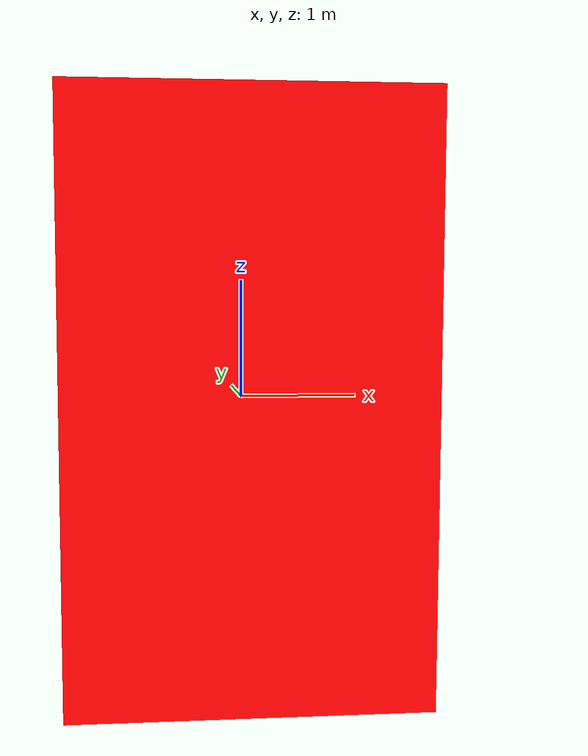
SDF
<?xml version="1.0" ?>
<sdf version="1.5">
    <model name="myfirstmodel">
        <static>false</static>
        <link name="link">
            <collision name="collision">
                <geometry>
                    <box>
                        <size>3 2 5</size>
                    </box>
                </geometry>
                <surface>
                    <friction>
                        <ode>
                            <mu>100</mu>
                            <mu2>50</mu2>
                        </ode>
                    </friction>
                </surface>
            </collision>
            <visual name="visual">
                <geometry>
                    <box>
                        <size>3 2 5</size>
                    </box>
                </geometry>
                <material>

                    <ambient>1 0 0 1</ambient> <!-- Define a cor do modelo -->
                    <diffuse>1 0 0 1</diffuse> <!-- Define a cor difusa -->
                </material>
            </visual>
            <inertial>
                <mass>1.0</mass> <!-- Define a massa do modelo -->
                <inertia>
                    <ixx>1.0</ixx>
                    <ixy>0.0</ixy>
                    <ixz>0.0</ixz>
                    <iyy>1.0</iyy>
                    <iyz>0.0</iyz>
                    <izz>1.0</izz>
                </inertia>
            </inertial>
        </link>
    </model>
</sdf>
